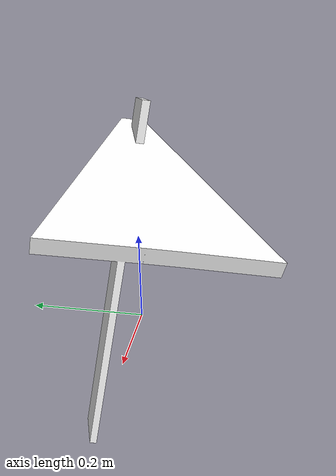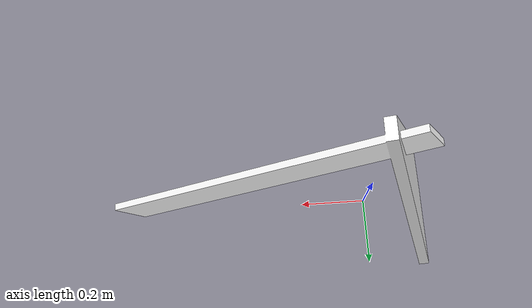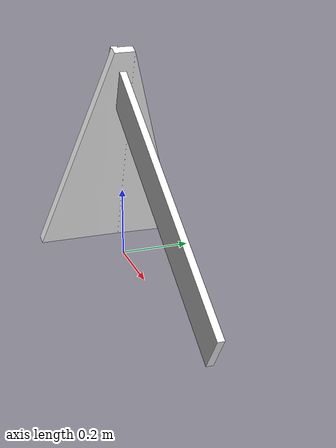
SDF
<?xml version='1.0'?>
<sdf version='1.4'>
    <model name="construction_tilted_fence">
        <static>true</static>
	    <link name="link">
		<collision name="collision">
		  <geometry>
			<mesh>
			    <uri>model://construction_tilted_fence/meshes/construction_tilted_fence.dae</uri>
			</mesh>
		    </geometry>
		</collision>
		<visual name='visual'>
		    <geometry>
			<mesh>
			    <uri>model://construction_tilted_fence/meshes/construction_tilted_fence.dae</uri>
			</mesh>
		    </geometry>
		</visual>
	    </link>
    </model>
</sdf>
